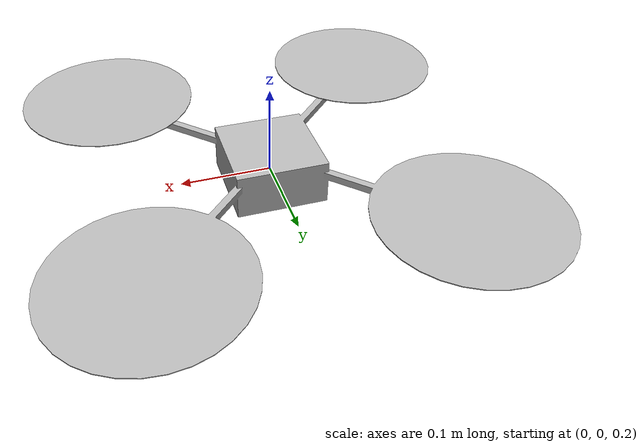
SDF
<?xml version="1.0"?>
<sdf version="1.6">
  <model name="mav">
    <allow_auto_disable>true</allow_auto_disable>

    <link name="chasis">
      <pose>0 0 0.182466 0 0 0</pose>
      <gravity>false</gravity>

      <collision name="collision">
        <geometry>
          <mesh>
            <uri>model://MAV/model.obj</uri>
          </mesh>
        </geometry>
      </collision>

      <visual name="visual">
        <cast_shadows>true</cast_shadows>
        <geometry>
          <mesh>
            <uri>model://MAV/model.obj</uri>
          </mesh>
        </geometry>
      </visual>
    </link>

  </model>
</sdf>
